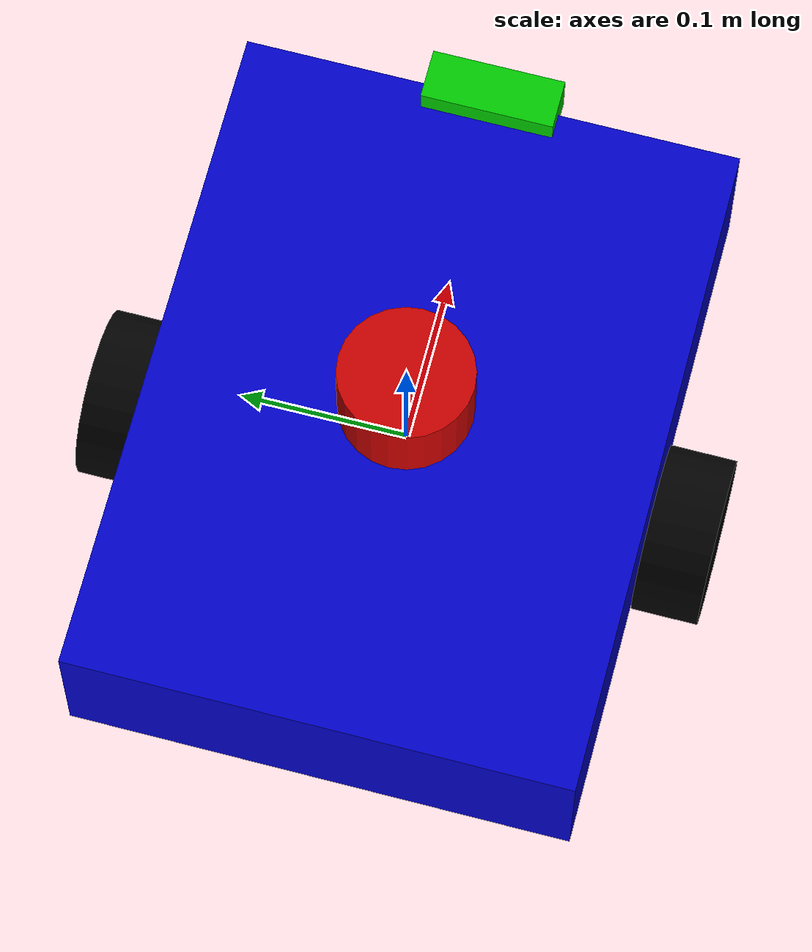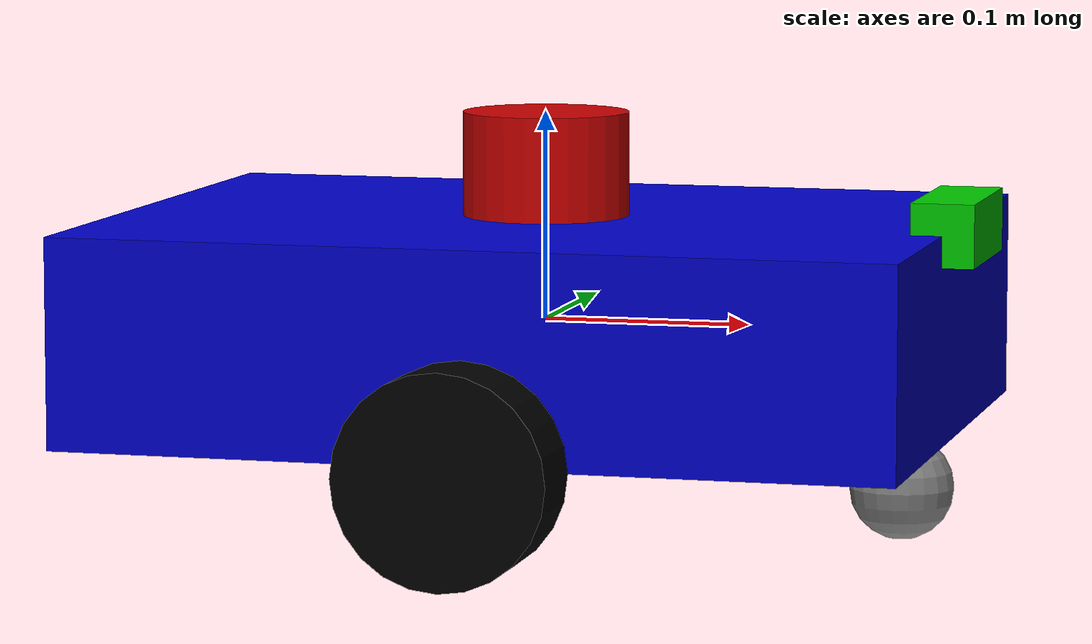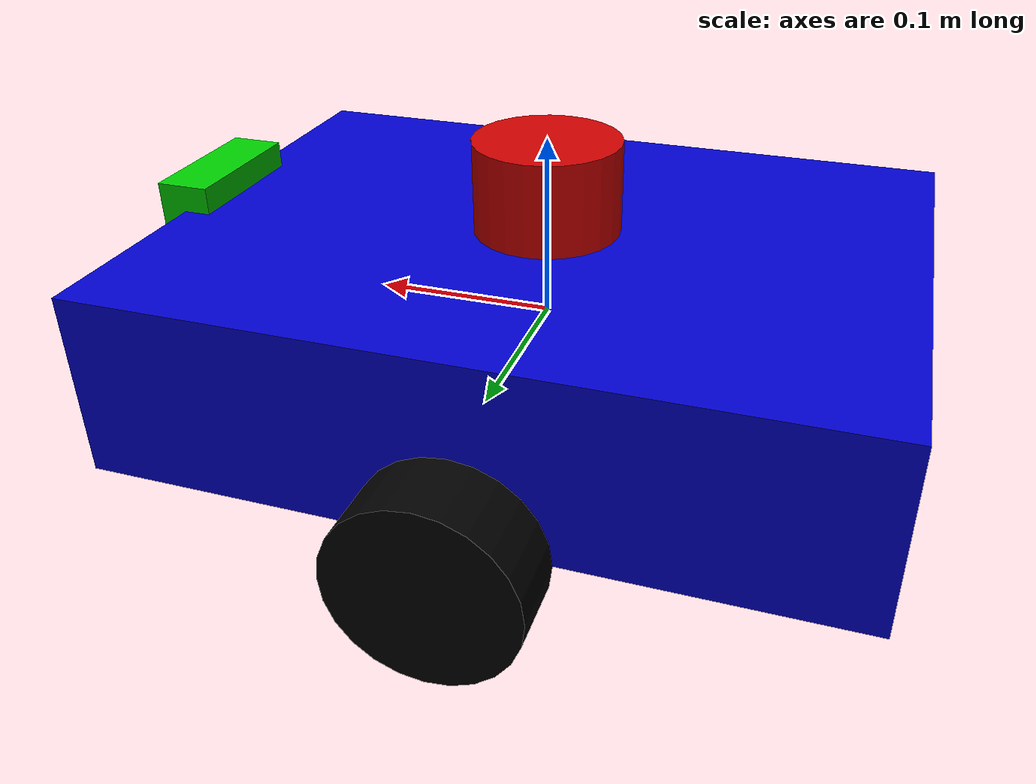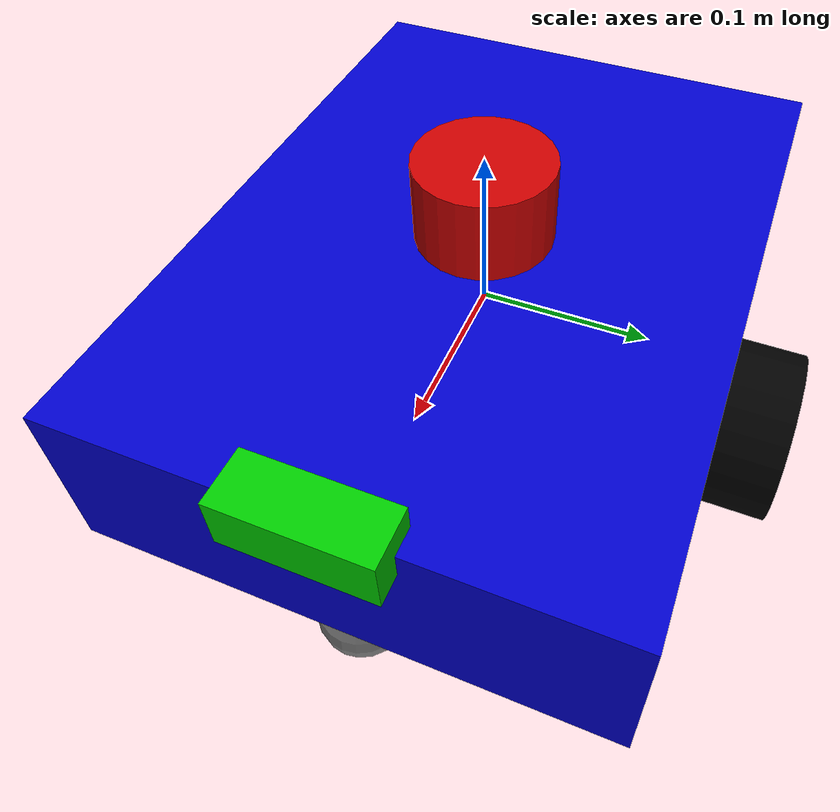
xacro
<?xml version="1.0"?>
<robot name="diff_robot" xmlns:xacro="http://www.ros.org/wiki/xacro">

  <!-- ===== PROPERTIES ===== -->
  <!-- Define sizes and masses here so we can reuse them -->
  <xacro:property name="base_length" value="0.4"/>
  <xacro:property name="base_width" value="0.3"/>
  <xacro:property name="base_height" value="0.1"/>
  <xacro:property name="base_mass" value="1.0"/>

  <xacro:property name="wheel_radius" value="0.05"/>
  <xacro:property name="wheel_thickness" value="0.04"/>
  <xacro:property name="wheel_mass" value="0.1"/>

  <xacro:property name="caster_radius" value="0.025"/>

  <!-- ===== BASE LINK ===== -->
  <!-- The main body of the robot -->
  <link name="base_link">
    <visual>
      <geometry>
        <box size="${base_length} ${base_width} ${base_height}"/>
      </geometry>
      <material name="blue">
        <color rgba="0 0 0.8 1"/>
      </material>
    </visual>
    <collision>
      <geometry>
        <box size="${base_length} ${base_width} ${base_height}"/>
      </geometry>
    </collision>
    <inertial>
      <mass value="${base_mass}"/>
      <inertia ixx="0.01" iyy="0.01" izz="0.01" ixy="0" ixz="0" iyz="0"/>
    </inertial>
  </link>

  <!-- ===== WHEEL MACRO ===== -->
  <!-- A macro so we don't write the same wheel code twice -->
  <xacro:macro name="wheel" params="name y_offset">
    <link name="${name}_wheel">
      <visual>
        <geometry>
          <cylinder radius="${wheel_radius}" length="${wheel_thickness}"/>
        </geometry>
        <material name="black">
          <color rgba="0 0 0 1"/>
        </material>
      </visual>
      <collision>
        <geometry>
          <cylinder radius="${wheel_radius}" length="${wheel_thickness}"/>
        </geometry>
      </collision>
      <inertial>
        <mass value="${wheel_mass}"/>
        <inertia ixx="0.001" iyy="0.001" izz="0.001" ixy="0" ixz="0" iyz="0"/>
      </inertial>
    </link>

    <joint name="${name}_wheel_joint" type="continuous">
      <parent link="base_link"/>
      <child link="${name}_wheel"/>
      <origin xyz="0 ${y_offset} ${-base_height/2}" rpy="-1.5708 0 0"/>
      <axis xyz="0 0 1"/>
    </joint>
  </xacro:macro>

  <!-- Create left and right wheels using the macro -->
  <xacro:wheel name="left" y_offset="${base_width/2 + wheel_thickness/2}"/>
  <xacro:wheel name="right" y_offset="${-(base_width/2 + wheel_thickness/2)}"/>

  <!-- ===== CASTER WHEEL ===== -->
  <link name="caster_wheel">
    <visual>
      <geometry>
        <sphere radius="${caster_radius}"/>
      </geometry>
      <material name="grey">
        <color rgba="0.5 0.5 0.5 1"/>
      </material>
    </visual>
    <collision>
      <geometry>
        <sphere radius="${caster_radius}"/>
      </geometry>
    </collision>
    <inertial>
      <mass value="0.05"/>
      <inertia ixx="0.0001" iyy="0.0001" izz="0.0001" ixy="0" ixz="0" iyz="0"/>
    </inertial>
  </link>

  <joint name="caster_wheel_joint" type="fixed">
    <parent link="base_link"/>
    <child link="caster_wheel"/>
    <origin xyz="${base_length/2 - caster_radius} 0 ${-base_height/2 - wheel_radius + caster_radius}"/>
  </joint>

  <!-- ===== LIDAR ===== -->
  <link name="lidar_link">
    <visual>
      <geometry>
        <cylinder radius="0.04" length="0.05"/>
      </geometry>
      <material name="red">
        <color rgba="0.8 0 0 1"/>
      </material>
    </visual>
    <collision>
      <geometry>
        <cylinder radius="0.04" length="0.05"/>
      </geometry>
    </collision>
    <inertial>
      <mass value="0.05"/>
      <inertia ixx="0.0001" iyy="0.0001" izz="0.0001" ixy="0" ixz="0" iyz="0"/>
    </inertial>
  </link>

  <joint name="lidar_joint" type="fixed">
    <parent link="base_link"/>
    <child link="lidar_link"/>
    <origin xyz="0 0 ${base_height/2 + 0.025}"/>
  </joint>

  <!-- ===== CAMERA ===== -->
  <link name="camera_link">
    <visual>
      <geometry>
        <box size="0.03 0.08 0.03"/>
      </geometry>
      <material name="green">
        <color rgba="0 0.8 0 1"/>
      </material>
    </visual>
    <collision>
      <geometry>
        <box size="0.03 0.08 0.03"/>
      </geometry>
    </collision>
    <inertial>
      <mass value="0.02"/>
      <inertia ixx="0.0001" iyy="0.0001" izz="0.0001" ixy="0" ixz="0" iyz="0"/>
    </inertial>
  </link>

  <joint name="camera_joint" type="fixed">
    <parent link="base_link"/>
    <child link="camera_link"/>
    <origin xyz="${base_length/2} 0 ${base_height/2}"/>
  </joint>

  <!-- ===== IMU ===== -->
  <link name="imu_link">
    <inertial>
      <mass value="0.01"/>
      <inertia ixx="1e-6" iyy="1e-6" izz="1e-6" ixy="0" ixz="0" iyz="0"/>
    </inertial>
  </link>

  <joint name="imu_joint" type="fixed">
    <parent link="base_link"/>
    <child link="imu_link"/>
    <origin xyz="0 0 ${base_height/2}"/>
  </joint>

  <xacro:include filename="$(find sim_bringup)/description/gazebo_control.xacro"/>

</robot>
